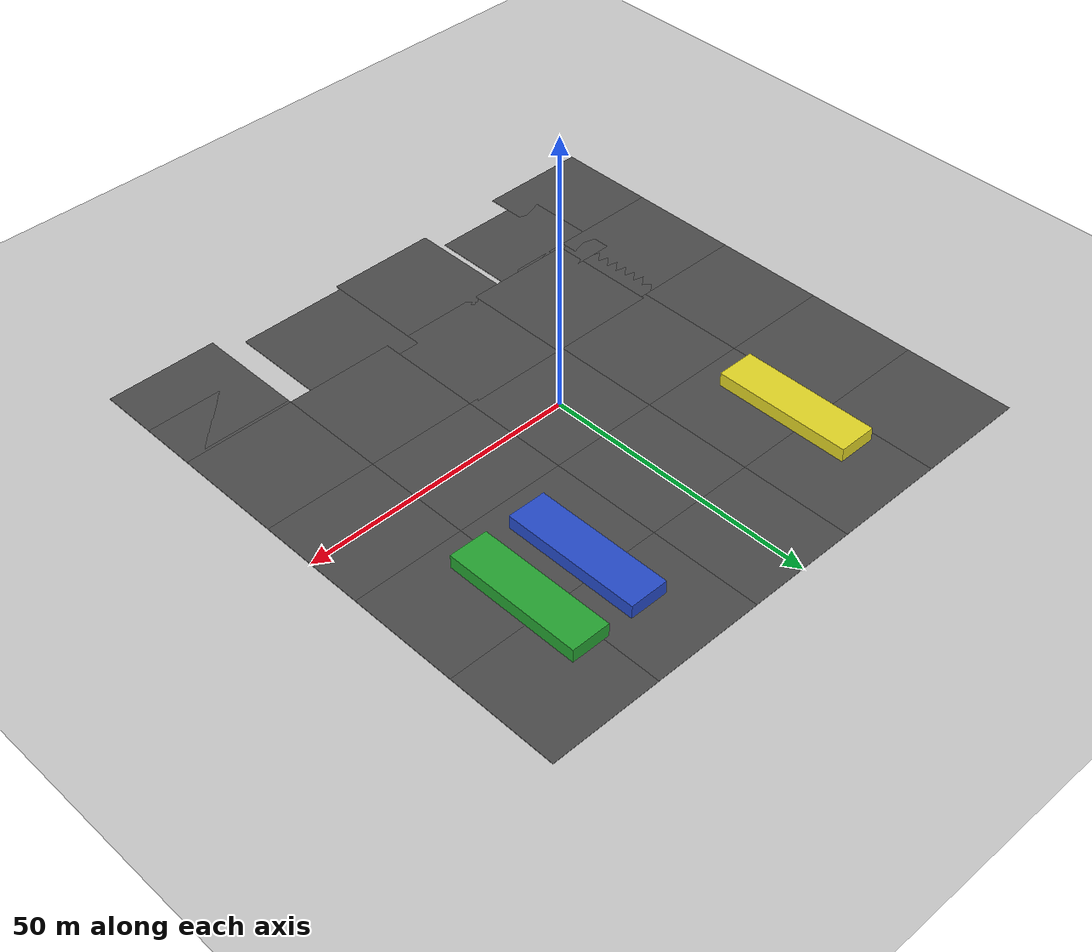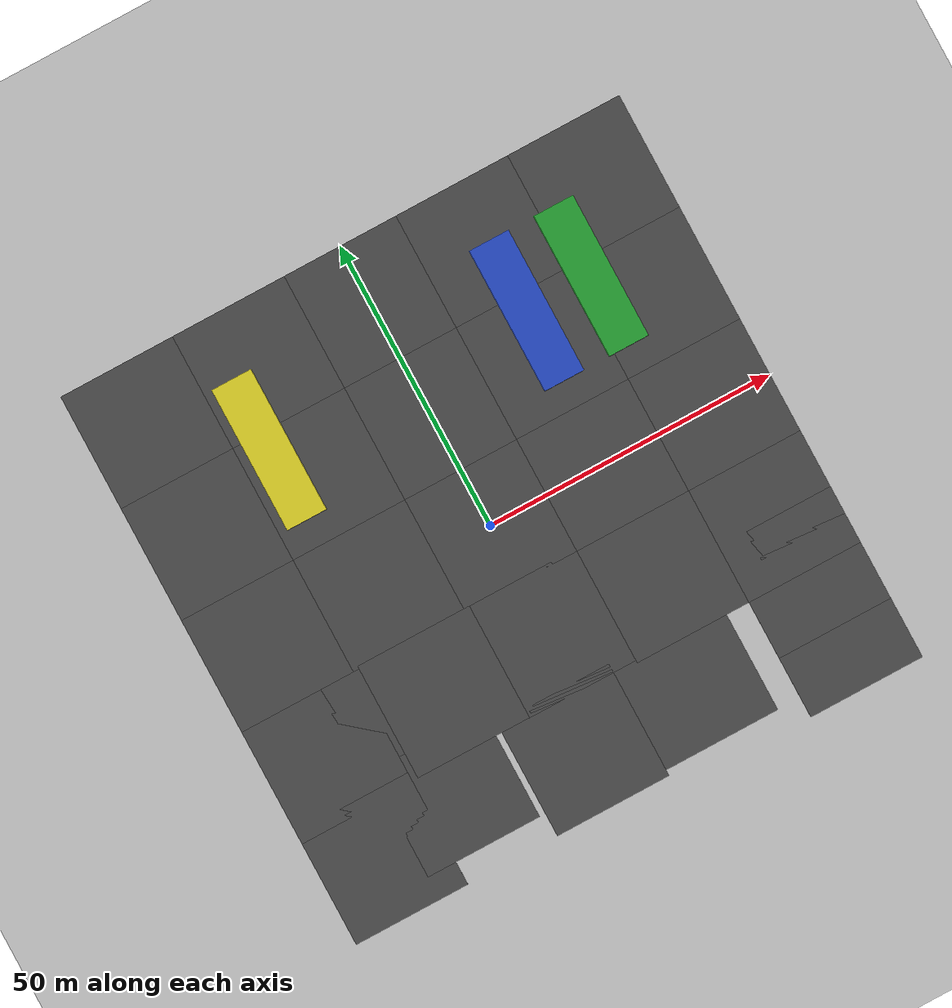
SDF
<gazebo version="1.2">
 <world name="default">
  <model name="plane1_model">
   <link name="body">
    <collision name="geom_1">
     <geometry><plane><normal>0.000000 0.000000 1.000000</normal><size>1.000000 1.000000</size></plane></geometry>
     <surface>
      <friction>
       <ode>
        <mu>10.000000</mu>
        <mu2>10.000000</mu2>
        <fdir1>0.000000 0.000000 0.000000</fdir1>
        <slip1>0.000000</slip1>
        <slip2>0.000000</slip2>
       </ode>
      </friction>
      <bounce>
       <restitution_coefficient>0.000000</restitution_coefficient>
       <threshold>1000000.000000</threshold>
      </bounce>
      <contact>
       <ode>
        <soft_cfm>0.000000</soft_cfm>
        <soft_erp>0.200000</soft_erp>
        <kp>10000000000.000000</kp>
        <kd>1.000000</kd>
        <max_vel>100.000000</max_vel>
        <min_depth>0.000100</min_depth>
       </ode>
      </contact>
     </surface>
    </collision>
    <visual name="visual_1">
     <geometry>
      <plane><normal>0.000000 0.000000 1.000000</normal><size>100.000000 100.000000</size></plane>
     </geometry>
     <material><script><uri>__default__</uri><name>__default__</name></script></material>
     <cast_shadows>0</cast_shadows>
    </visual>
    <velocity_decay><linear>0.000000</linear><angular>0.000000</angular></velocity_decay>
   </link>
   <static>1</static>
  </model>
  <model name="unit_box_4">
   <pose>-25.000000 27.000000 0.500000 0.000000 0.000000 0.000000</pose>
   <link name="link">
    <inertial>
     <mass>1.000000</mass>
     <inertia>
      <ixx>1.000000</ixx>
      <ixy>0.000000</ixy>
      <ixz>0.000000</ixz>
      <iyy>1.000000</iyy>
      <iyz>0.000000</iyz>
      <izz>1.000000</izz>
     </inertia>
    </inertial>
    <collision name="collision">
     <geometry><box><size>80.000000 20.000000 3.000000</size></box></geometry>
    </collision>
    <visual name="visual">
     <geometry><box><size>7.000000 25.000000 4.000000</size></box></geometry>
     <material>
      <script><uri>file://media/materials/scripts/gazebo.material</uri><name>Gazebo/Yellow</name></script>
     </material>
    </visual>
    <velocity_decay><linear>0.000000</linear><angular>0.000000</angular></velocity_decay>
   </link>
   <static>1</static>
  </model>
  <model name="unit_box_5">
   <pose>32.514400 27.000000 0.500000 0.000000 0.000000 0.000000</pose>
   <link name="link">
    <inertial>
     <mass>1.000000</mass>
     <inertia>
      <ixx>1.000000</ixx>
      <ixy>0.000000</ixy>
      <ixz>0.000000</ixz>
      <iyy>1.000000</iyy>
      <iyz>0.000000</iyz>
      <izz>1.000000</izz>
     </inertia>
    </inertial>
    <collision name="collision">
     <geometry><box><size>1.000000 1.000000 1.000000</size></box></geometry>
    </collision>
    <visual name="visual">
     <geometry><box><size>7.000000 25.000000 4.000000</size></box></geometry>
     <material>
      <script><uri>file://media/materials/scripts/gazebo.material</uri><name>Gazebo/Green</name></script>
     </material>
    </visual>
    <velocity_decay><linear>0.000000</linear><angular>0.000000</angular></velocity_decay>
   </link>
   <static>1</static>
  </model>
  <model name="unit_box_6">
   <pose>21.000000 27.000000 0.500000 0.000000 0.000000 0.000000</pose>
   <link name="link">
    <inertial>
     <mass>1.000000</mass>
     <inertia>
      <ixx>1.000000</ixx>
      <ixy>0.000000</ixy>
      <ixz>0.000000</ixz>
      <iyy>1.000000</iyy>
      <iyz>0.000000</iyz>
      <izz>1.000000</izz>
     </inertia>
    </inertial>
    <collision name="collision">
     <geometry><box><size>1.000000 1.000000 1.000000</size></box></geometry>
    </collision>
    <visual name="visual">
     <geometry><box><size>7.000000 25.000000 4.000000</size></box></geometry>
     <material>
      <script><uri>file://media/materials/scripts/gazebo.material</uri><name>Gazebo/Blue</name></script>
     </material>
    </visual>
    <velocity_decay><linear>0.000000</linear><angular>0.000000</angular></velocity_decay>
   </link>
   <static>1</static>
  </model>
  <model name="asphalt_plane">
   <static>1</static>
   <link name="link">
    <collision name="collision">
     <geometry><box><size>20.000000 20.000000 0.100000</size></box></geometry>
    </collision>
    <visual name="visual">
     <cast_shadows>0</cast_shadows>
     <geometry><box><size>20.000000 20.000000 0.100000</size></box></geometry>
     <material>
      <script>
       <uri>model://asphalt_plane/materials/scripts</uri>
       <uri>model://asphalt_plane/materials/textures</uri>
       <name>vrc/asphalt</name>
      </script>
     </material>
    </visual>
    <velocity_decay><linear>0.000000</linear><angular>0.000000</angular></velocity_decay>
   </link>
   <pose>40.000000 -40.520300 0.000000 0.000000 0.000000 0.000000</pose>
  </model>
  <model name="asphalt_plane_0">
   <static>1</static>
   <link name="link">
    <collision name="collision">
     <geometry><box><size>20.000000 20.000000 0.100000</size></box></geometry>
    </collision>
    <visual name="visual">
     <cast_shadows>0</cast_shadows>
     <geometry><box><size>20.000000 20.000000 0.100000</size></box></geometry>
     <material>
      <script>
       <uri>model://asphalt_plane/materials/scripts</uri>
       <uri>model://asphalt_plane/materials/textures</uri>
       <name>vrc/asphalt</name>
      </script>
     </material>
    </visual>
    <velocity_decay><linear>0.000000</linear><angular>0.000000</angular></velocity_decay>
   </link>
   <pose>40.000000 -20.000000 0.000000 0.000000 0.000000 0.000000</pose>
  </model>
  <model name="asphalt_plane_1">
   <static>1</static>
   <link name="link">
    <collision name="collision">
     <geometry><box><size>20.000000 20.000000 0.100000</size></box></geometry>
    </collision>
    <visual name="visual">
     <cast_shadows>0</cast_shadows>
     <geometry><box><size>20.000000 20.000000 0.100000</size></box></geometry>
     <material>
      <script>
       <uri>model://asphalt_plane/materials/scripts</uri>
       <uri>model://asphalt_plane/materials/textures</uri>
       <name>vrc/asphalt</name>
      </script>
     </material>
    </visual>
    <velocity_decay><linear>0.000000</linear><angular>0.000000</angular></velocity_decay>
   </link>
   <pose>40.000000 -30.000000 0.000000 0.000000 0.000000 0.000000</pose>
  </model>
  <model name="asphalt_plane_2">
   <static>1</static>
   <link name="link">
    <collision name="collision">
     <geometry><box><size>20.000000 20.000000 0.100000</size></box></geometry>
    </collision>
    <visual name="visual">
     <cast_shadows>0</cast_shadows>
     <geometry><box><size>20.000000 20.000000 0.100000</size></box></geometry>
     <material>
      <script>
       <uri>model://asphalt_plane/materials/scripts</uri>
       <uri>model://asphalt_plane/materials/textures</uri>
       <name>vrc/asphalt</name>
      </script>
     </material>
    </visual>
    <velocity_decay><linear>0.000000</linear><angular>0.000000</angular></velocity_decay>
   </link>
   <pose>40.000000 0.000000 0.000000 0.000000 0.000000 0.000000</pose>
  </model>
  <model name="asphalt_plane_3">
   <static>1</static>
   <link name="link">
    <collision name="collision">
     <geometry><box><size>20.000000 20.000000 0.100000</size></box></geometry>
    </collision>
    <visual name="visual">
     <cast_shadows>0</cast_shadows>
     <geometry><box><size>20.000000 20.000000 0.100000</size></box></geometry>
     <material>
      <script>
       <uri>model://asphalt_plane/materials/scripts</uri>
       <uri>model://asphalt_plane/materials/textures</uri>
       <name>vrc/asphalt</name>
      </script>
     </material>
    </visual>
    <velocity_decay><linear>0.000000</linear><angular>0.000000</angular></velocity_decay>
   </link>
   <pose>40.000000 20.000000 0.000000 0.000000 0.000000 0.000000</pose>
  </model>
  <model name="asphalt_plane_4">
   <static>1</static>
   <link name="link">
    <collision name="collision">
     <geometry><box><size>20.000000 20.000000 0.100000</size></box></geometry>
    </collision>
    <visual name="visual">
     <cast_shadows>0</cast_shadows>
     <geometry><box><size>20.000000 20.000000 0.100000</size></box></geometry>
     <material>
      <script>
       <uri>model://asphalt_plane/materials/scripts</uri>
       <uri>model://asphalt_plane/materials/textures</uri>
       <name>vrc/asphalt</name>
      </script>
     </material>
    </visual>
    <velocity_decay><linear>0.000000</linear><angular>0.000000</angular></velocity_decay>
   </link>
   <pose>40.000000 40.000000 0.000000 0.000000 0.000000 0.000000</pose>
  </model>
  <model name="asphalt_plane_5">
   <static>1</static>
   <link name="link">
    <collision name="collision">
     <geometry><box><size>20.000000 20.000000 0.100000</size></box></geometry>
    </collision>
    <visual name="visual">
     <cast_shadows>0</cast_shadows>
     <geometry><box><size>20.000000 20.000000 0.100000</size></box></geometry>
     <material>
      <script>
       <uri>model://asphalt_plane/materials/scripts</uri>
       <uri>model://asphalt_plane/materials/textures</uri>
       <name>vrc/asphalt</name>
      </script>
     </material>
    </visual>
    <velocity_decay><linear>0.000000</linear><angular>0.000000</angular></velocity_decay>
   </link>
   <pose>20.000000 40.000000 0.000000 0.000000 0.000000 0.000000</pose>
  </model>
  <model name="asphalt_plane_6">
   <static>1</static>
   <link name="link">
    <collision name="collision">
     <geometry><box><size>20.000000 20.000000 0.100000</size></box></geometry>
    </collision>
    <visual name="visual">
     <cast_shadows>0</cast_shadows>
     <geometry><box><size>20.000000 20.000000 0.100000</size></box></geometry>
     <material>
      <script>
       <uri>model://asphalt_plane/materials/scripts</uri>
       <uri>model://asphalt_plane/materials/textures</uri>
       <name>vrc/asphalt</name>
      </script>
     </material>
    </visual>
    <velocity_decay><linear>0.000000</linear><angular>0.000000</angular></velocity_decay>
   </link>
   <pose>20.000000 20.000000 0.000000 0.000000 0.000000 0.000000</pose>
  </model>
  <model name="asphalt_plane_7">
   <static>1</static>
   <link name="link">
    <collision name="collision">
     <geometry><box><size>20.000000 20.000000 0.100000</size></box></geometry>
    </collision>
    <visual name="visual">
     <cast_shadows>0</cast_shadows>
     <geometry><box><size>20.000000 20.000000 0.100000</size></box></geometry>
     <material>
      <script>
       <uri>model://asphalt_plane/materials/scripts</uri>
       <uri>model://asphalt_plane/materials/textures</uri>
       <name>vrc/asphalt</name>
      </script>
     </material>
    </visual>
    <velocity_decay><linear>0.000000</linear><angular>0.000000</angular></velocity_decay>
   </link>
   <pose>0.000000 40.000000 0.000000 0.000000 0.000000 0.000000</pose>
  </model>
  <model name="asphalt_plane_8">
   <static>1</static>
   <link name="link">
    <collision name="collision">
     <geometry><box><size>20.000000 20.000000 0.100000</size></box></geometry>
    </collision>
    <visual name="visual">
     <cast_shadows>0</cast_shadows>
     <geometry><box><size>20.000000 20.000000 0.100000</size></box></geometry>
     <material>
      <script>
       <uri>model://asphalt_plane/materials/scripts</uri>
       <uri>model://asphalt_plane/materials/textures</uri>
       <name>vrc/asphalt</name>
      </script>
     </material>
    </visual>
    <velocity_decay><linear>0.000000</linear><angular>0.000000</angular></velocity_decay>
   </link>
   <pose>-20.000000 40.000000 0.000000 0.000000 0.000000 0.000000</pose>
  </model>
  <model name="asphalt_plane_9">
   <static>1</static>
   <link name="link">
    <collision name="collision">
     <geometry><box><size>20.000000 20.000000 0.100000</size></box></geometry>
    </collision>
    <visual name="visual">
     <cast_shadows>0</cast_shadows>
     <geometry><box><size>20.000000 20.000000 0.100000</size></box></geometry>
     <material>
      <script>
       <uri>model://asphalt_plane/materials/scripts</uri>
       <uri>model://asphalt_plane/materials/textures</uri>
       <name>vrc/asphalt</name>
      </script>
     </material>
    </visual>
    <velocity_decay><linear>0.000000</linear><angular>0.000000</angular></velocity_decay>
   </link>
   <pose>-40.000000 40.000000 0.000000 0.000000 0.000000 0.000000</pose>
  </model>
  <model name="asphalt_plane_10">
   <static>1</static>
   <link name="link">
    <collision name="collision">
     <geometry><box><size>20.000000 20.000000 0.100000</size></box></geometry>
    </collision>
    <visual name="visual">
     <cast_shadows>0</cast_shadows>
     <geometry><box><size>20.000000 20.000000 0.100000</size></box></geometry>
     <material>
      <script>
       <uri>model://asphalt_plane/materials/scripts</uri>
       <uri>model://asphalt_plane/materials/textures</uri>
       <name>vrc/asphalt</name>
      </script>
     </material>
    </visual>
    <velocity_decay><linear>0.000000</linear><angular>0.000000</angular></velocity_decay>
   </link>
   <pose>0.000000 20.000000 0.000000 0.000000 0.000000 0.000000</pose>
  </model>
  <model name="asphalt_plane_11">
   <static>1</static>
   <link name="link">
    <collision name="collision">
     <geometry><box><size>20.000000 20.000000 0.100000</size></box></geometry>
    </collision>
    <visual name="visual">
     <cast_shadows>0</cast_shadows>
     <geometry><box><size>20.000000 20.000000 0.100000</size></box></geometry>
     <material>
      <script>
       <uri>model://asphalt_plane/materials/scripts</uri>
       <uri>model://asphalt_plane/materials/textures</uri>
       <name>vrc/asphalt</name>
      </script>
     </material>
    </visual>
    <velocity_decay><linear>0.000000</linear><angular>0.000000</angular></velocity_decay>
   </link>
   <pose>-20.000000 20.000000 0.000000 0.000000 0.000000 0.000000</pose>
  </model>
  <model name="asphalt_plane_12">
   <static>1</static>
   <link name="link">
    <collision name="collision">
     <geometry><box><size>20.000000 20.000000 0.100000</size></box></geometry>
    </collision>
    <visual name="visual">
     <cast_shadows>0</cast_shadows>
     <geometry><box><size>20.000000 20.000000 0.100000</size></box></geometry>
     <material>
      <script>
       <uri>model://asphalt_plane/materials/scripts</uri>
       <uri>model://asphalt_plane/materials/textures</uri>
       <name>vrc/asphalt</name>
      </script>
     </material>
    </visual>
    <velocity_decay><linear>0.000000</linear><angular>0.000000</angular></velocity_decay>
   </link>
   <pose>-40.000000 20.000000 0.000000 0.000000 0.000000 0.000000</pose>
  </model>
  <model name="asphalt_plane_13">
   <static>1</static>
   <link name="link">
    <collision name="collision">
     <geometry><box><size>20.000000 20.000000 0.100000</size></box></geometry>
    </collision>
    <visual name="visual">
     <cast_shadows>0</cast_shadows>
     <geometry><box><size>20.000000 20.000000 0.100000</size></box></geometry>
     <material>
      <script>
       <uri>model://asphalt_plane/materials/scripts</uri>
       <uri>model://asphalt_plane/materials/textures</uri>
       <name>vrc/asphalt</name>
      </script>
     </material>
    </visual>
    <velocity_decay><linear>0.000000</linear><angular>0.000000</angular></velocity_decay>
   </link>
   <pose>20.000000 0.000000 0.000000 0.000000 0.000000 0.000000</pose>
  </model>
  <model name="asphalt_plane_14">
   <static>1</static>
   <link name="link">
    <collision name="collision">
     <geometry><box><size>20.000000 20.000000 0.100000</size></box></geometry>
    </collision>
    <visual name="visual">
     <cast_shadows>0</cast_shadows>
     <geometry><box><size>20.000000 20.000000 0.100000</size></box></geometry>
     <material>
      <script>
       <uri>model://asphalt_plane/materials/scripts</uri>
       <uri>model://asphalt_plane/materials/textures</uri>
       <name>vrc/asphalt</name>
      </script>
     </material>
    </visual>
    <velocity_decay><linear>0.000000</linear><angular>0.000000</angular></velocity_decay>
   </link>
   <pose>-40.000000 0.000000 0.000000 0.000000 0.000000 0.000000</pose>
  </model>
  <model name="asphalt_plane_15">
   <static>1</static>
   <link name="link">
    <collision name="collision">
     <geometry><box><size>20.000000 20.000000 0.100000</size></box></geometry>
    </collision>
    <visual name="visual">
     <cast_shadows>0</cast_shadows>
     <geometry><box><size>20.000000 20.000000 0.100000</size></box></geometry>
     <material>
      <script>
       <uri>model://asphalt_plane/materials/scripts</uri>
       <uri>model://asphalt_plane/materials/textures</uri>
       <name>vrc/asphalt</name>
      </script>
     </material>
    </visual>
    <velocity_decay><linear>0.000000</linear><angular>0.000000</angular></velocity_decay>
   </link>
   <pose>-40.000000 -20.000000 0.000000 0.000000 0.000000 0.000000</pose>
  </model>
  <model name="asphalt_plane_16">
   <static>1</static>
   <link name="link">
    <collision name="collision">
     <geometry><box><size>20.000000 20.000000 0.100000</size></box></geometry>
    </collision>
    <visual name="visual">
     <cast_shadows>0</cast_shadows>
     <geometry><box><size>20.000000 20.000000 0.100000</size></box></geometry>
     <material>
      <script>
       <uri>model://asphalt_plane/materials/scripts</uri>
       <uri>model://asphalt_plane/materials/textures</uri>
       <name>vrc/asphalt</name>
      </script>
     </material>
    </visual>
    <velocity_decay><linear>0.000000</linear><angular>0.000000</angular></velocity_decay>
   </link>
  </model>
  <model name="asphalt_plane_17">
   <static>1</static>
   <link name="link">
    <collision name="collision">
     <geometry><box><size>20.000000 20.000000 0.100000</size></box></geometry>
    </collision>
    <visual name="visual">
     <cast_shadows>0</cast_shadows>
     <geometry><box><size>20.000000 20.000000 0.100000</size></box></geometry>
     <material>
      <script>
       <uri>model://asphalt_plane/materials/scripts</uri>
       <uri>model://asphalt_plane/materials/textures</uri>
       <name>vrc/asphalt</name>
      </script>
     </material>
    </visual>
    <velocity_decay><linear>0.000000</linear><angular>0.000000</angular></velocity_decay>
   </link>
   <pose>-20.000000 0.000000 0.000000 0.000000 0.000000 0.000000</pose>
  </model>
  <model name="asphalt_plane_18">
   <static>1</static>
   <link name="link">
    <collision name="collision">
     <geometry><box><size>20.000000 20.000000 0.100000</size></box></geometry>
    </collision>
    <visual name="visual">
     <cast_shadows>0</cast_shadows>
     <geometry><box><size>20.000000 20.000000 0.100000</size></box></geometry>
     <material>
      <script>
       <uri>model://asphalt_plane/materials/scripts</uri>
       <uri>model://asphalt_plane/materials/textures</uri>
       <name>vrc/asphalt</name>
      </script>
     </material>
    </visual>
    <velocity_decay><linear>0.000000</linear><angular>0.000000</angular></velocity_decay>
   </link>
   <pose>20.000000 -20.000000 0.000000 0.000000 0.000000 0.000000</pose>
  </model>
  <model name="asphalt_plane_19">
   <static>1</static>
   <link name="link">
    <collision name="collision">
     <geometry><box><size>20.000000 20.000000 0.100000</size></box></geometry>
    </collision>
    <visual name="visual">
     <cast_shadows>0</cast_shadows>
     <geometry><box><size>20.000000 20.000000 0.100000</size></box></geometry>
     <material>
      <script>
       <uri>model://asphalt_plane/materials/scripts</uri>
       <uri>model://asphalt_plane/materials/textures</uri>
       <name>vrc/asphalt</name>
      </script>
     </material>
    </visual>
    <velocity_decay><linear>0.000000</linear><angular>0.000000</angular></velocity_decay>
   </link>
   <pose>1.000000 -19.557600 0.000000 0.000000 0.000000 0.000000</pose>
  </model>
  <model name="asphalt_plane_20">
   <static>1</static>
   <link name="link">
    <collision name="collision">
     <geometry><box><size>20.000000 20.000000 0.100000</size></box></geometry>
    </collision>
    <visual name="visual">
     <cast_shadows>0</cast_shadows>
     <geometry><box><size>20.000000 20.000000 0.100000</size></box></geometry>
     <material>
      <script>
       <uri>model://asphalt_plane/materials/scripts</uri>
       <uri>model://asphalt_plane/materials/textures</uri>
       <name>vrc/asphalt</name>
      </script>
     </material>
    </visual>
    <velocity_decay><linear>0.000000</linear><angular>0.000000</angular></velocity_decay>
   </link>
   <pose>-19.000000 -19.512800 0.000000 0.000000 0.000000 0.000000</pose>
  </model>
  <model name="asphalt_plane_21">
   <static>1</static>
   <link name="link">
    <collision name="collision">
     <geometry><box><size>20.000000 20.000000 0.100000</size></box></geometry>
    </collision>
    <visual name="visual">
     <cast_shadows>0</cast_shadows>
     <geometry><box><size>20.000000 20.000000 0.100000</size></box></geometry>
     <material>
      <script>
       <uri>model://asphalt_plane/materials/scripts</uri>
       <uri>model://asphalt_plane/materials/textures</uri>
       <name>vrc/asphalt</name>
      </script>
     </material>
    </visual>
    <velocity_decay><linear>0.000000</linear><angular>0.000000</angular></velocity_decay>
   </link>
   <pose>-40.000000 -38.000000 0.000000 0.000000 0.000000 0.000000</pose>
  </model>
  <model name="asphalt_plane_22">
   <static>1</static>
   <link name="link">
    <collision name="collision">
     <geometry><box><size>20.000000 20.000000 0.100000</size></box></geometry>
    </collision>
    <visual name="visual">
     <cast_shadows>0</cast_shadows>
     <geometry><box><size>20.000000 20.000000 0.100000</size></box></geometry>
     <material>
      <script>
       <uri>model://asphalt_plane/materials/scripts</uri>
       <uri>model://asphalt_plane/materials/textures</uri>
       <name>vrc/asphalt</name>
      </script>
     </material>
    </visual>
    <velocity_decay><linear>0.000000</linear><angular>0.000000</angular></velocity_decay>
   </link>
   <pose>16.000000 -37.000000 0.000000 0.000000 0.000000 0.000000</pose>
  </model>
  <model name="asphalt_plane_23">
   <static>1</static>
   <link name="link">
    <collision name="collision">
     <geometry><box><size>20.000000 20.000000 0.100000</size></box></geometry>
    </collision>
    <visual name="visual">
     <cast_shadows>0</cast_shadows>
     <geometry><box><size>20.000000 20.000000 0.100000</size></box></geometry>
     <material>
      <script>
       <uri>model://asphalt_plane/materials/scripts</uri>
       <uri>model://asphalt_plane/materials/textures</uri>
       <name>vrc/asphalt</name>
      </script>
     </material>
    </visual>
    <velocity_decay><linear>0.000000</linear><angular>0.000000</angular></velocity_decay>
   </link>
   <pose>-4.000000 -38.000000 0.000000 0.000000 0.000000 0.000000</pose>
  </model>
  <model name="asphalt_plane_24">
   <static>1</static>
   <link name="link">
    <collision name="collision">
     <geometry><box><size>20.000000 20.000000 0.100000</size></box></geometry>
    </collision>
    <visual name="visual">
     <cast_shadows>0</cast_shadows>
     <geometry><box><size>20.000000 20.000000 0.100000</size></box></geometry>
     <material>
      <script>
       <uri>model://asphalt_plane/materials/scripts</uri>
       <uri>model://asphalt_plane/materials/textures</uri>
       <name>vrc/asphalt</name>
      </script>
     </material>
    </visual>
    <velocity_decay><linear>0.000000</linear><angular>0.000000</angular></velocity_decay>
   </link>
   <pose>-27.000000 -20.000000 0.000000 0.000000 0.000000 0.000000</pose>
  </model>
  <model name="asphalt_plane_25">
   <static>1</static>
   <link name="link">
    <collision name="collision">
     <geometry><box><size>20.000000 20.000000 0.100000</size></box></geometry>
    </collision>
    <visual name="visual">
     <cast_shadows>0</cast_shadows>
     <geometry><box><size>20.000000 20.000000 0.100000</size></box></geometry>
     <material>
      <script>
       <uri>model://asphalt_plane/materials/scripts</uri>
       <uri>model://asphalt_plane/materials/textures</uri>
       <name>vrc/asphalt</name>
      </script>
     </material>
    </visual>
    <velocity_decay><linear>0.000000</linear><angular>0.000000</angular></velocity_decay>
   </link>
   <pose>-25.000000 -34.000000 0.000000 0.000000 0.000000 0.000000</pose>
  </model>
 </world>
</gazebo>
